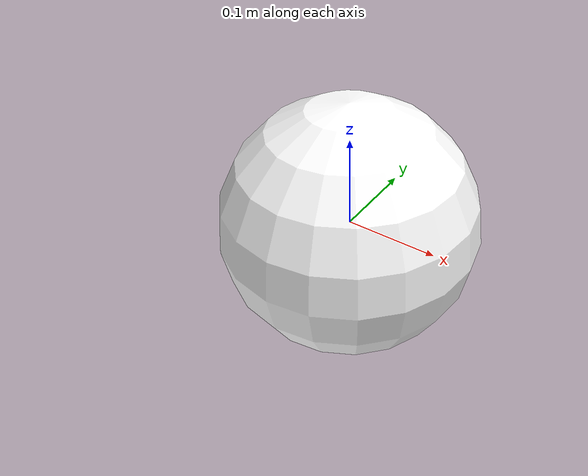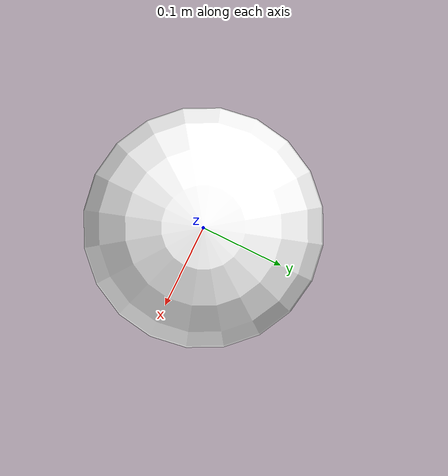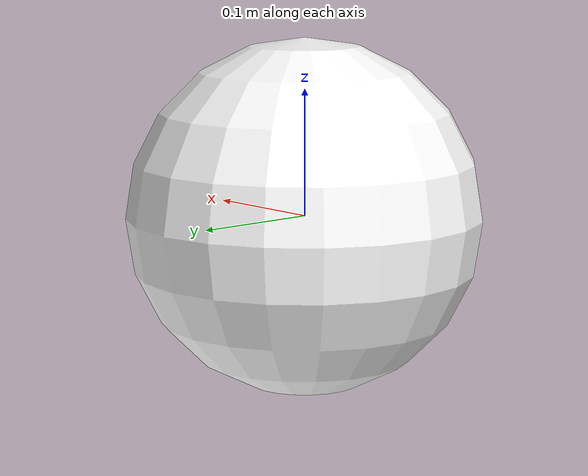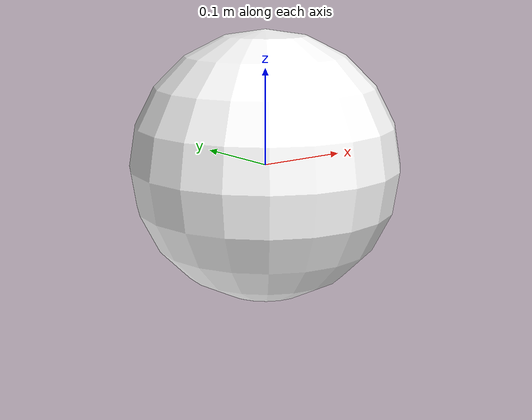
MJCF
<mujoco model='Two obstacles ball'>
    <!-- This file is going to make the structure of a moving_hand -->
	<compiler inertiafromgeom='true' angle='degree'/>
    <default>
        <joint limited='true' damping='1' armature='0'/>
        <geom contype='1' conaffinity='1' condim='1' rgba='0.5 0.3 .4 1'
        	margin="0.001" solref=".02 1" solimp=".8 .8 .01"/>
        <motor ctrlrange='-.4 .4' ctrllimited='true'/>
		<!-- add some classes -->
    </default>

    <option timestep='0.002' iterations="50" tolerance="1e-10" solver="Newton" jacobian="dense" cone="elliptic"/>

    <size nstack="1000000"/>

    <visual>
	<!-- the visual part, which is not very important -->
        <map fogstart="3" fogend="5" force="0.1" znear="0.5"/>
        <quality shadowsize="2048" offsamples="8"/>
        <global offwidth="800" offheight="800"/>
		<!-- the size of the scenary -->
    </visual>

    <asset>
        <!-- asset is the predefined setting -->
		<texture type="skybox" builtin="gradient" width="128" height="128" rgb1=".4 .6 .8"
            rgb2="0 0 0"/>
        <texture name="texgeom" type="cube" builtin="flat" mark="cross" width="127" height="1278"
            rgb1="0.4 0.4 0.1" rgb2="0.5 0.5 0.1" markrgb="1 1 1" random="0.01"/>
        <texture name="texplane" type="2d" builtin="checker" rgb1=".2 .3 .4" rgb2=".1 0.15 0.2"
            width="512" height="512"/>
		<!-- the material is a more complicated structure -->
        <material name='MatPlane' reflectance='0.3' texture="texplane" texrepeat="1 1" texuniform="true"/>
    </asset>

    <worldbody>
		<!-- the light is bounded on a body-->
        <light mode='targetbodycom' target='ball' directional='false' castshadow='false'  diffuse='.8 .8 .8' specular='0.3 0.3 0.3' pos='1 1 4.0' dir='0 0 -1'/>
		<!-- structure for the hand first -->
		<body name='ball' pos='0.0 0.0 0.0'>
            <!-- transition free on this plane -->
			<joint name='slide1' type='slide' range='-1.0 1.0' axis='1 0 0' />
			<joint name='slide2' type='slide' range='-1.0 1.0' axis='0 1 0' />
			<geom type='sphere' size="0.04" rgba=".5 .0 .5 1"/>
		</body>
		<body name='slidebar' pos='0.0 0.0 0.0'>
			<geom type='sphere' size='0.09' rgba=".5 .5 .0 1"/>
			<site name='button' type='sphere' size='0.1' rgba='1 1 1 0'/>
			<!-- the button should free move -->
			<joint name='slide3' type='slide' range='-1.0 1.0' axis='1 0 0' />
			<joint name='slide4' type='slide' range='-1.0 1.0' axis='0 1 0' />
		</body>
		<!-- a coordinate around coordinate of size 0.15 -->
        <body name='obstacle' pos='0 0 0'>
		<!-- the obstacle can move among all of the area -->
            <inertial pos='0 0 0' mass='10000000' diaginertia='166.67 166.67 166.67' />
		    <geom name = 'safe_ball' type='sphere' rgba='1 1 1 1' size = '0.14'/>
		    <site name='safe_area' type='sphere' rgba='1 1 1 0' size='0.15'/>
			<joint name='safe_slide1' type='slide' range='-1.0 1.0' axis='1 0 0' />
			<joint name='safe_slide2' type='slide' range='-1.0 1.0' axis='0 1 0' />
        </body>

        <body name='obstacle_2' pos='0 0 0'>
		<!-- the obstacle can move among all of the area -->
            <inertial pos='0 0 0' mass='10000000' diaginertia='166.67 166.67 166.67' />
		    <geom name = 'safe_ball_2' type='sphere' rgba='1 1 1 1' size = '0.14'/>
		    <site name='safe_area_2' type='sphere' rgba='1 1 1 0' size='0.15'/>
			<joint name='safe_slide3' type='slide' range='-1.0 1.0' axis='1 0 0' />
			<joint name='safe_slide4' type='slide' range='-1.0 1.0' axis='0 1 0' />
        </body>

        <camera name="camera1" mode="fixed" pos="0 0 2.6" />
        <camera name="camera2" mode="fixed" pos="0 0.5 0" quat="0 0 1 1"/>
    </worldbody>
	<!-- body finished -->
	<sensor>
		<touch name='touch_button' site='button'/>
		<touch name='safe_area' site='safe_area'/>
		<touch name='safe_area_2' site='safe_area_2'/>
	</sensor>
	<!-- actuator -->
    <actuator>
		<motor joint='slide1' name='slide1' ctrlrange='-0.5 0.5'/>
		<motor joint='slide2' name='slide2' ctrlrange='-0.5 0.5'/>
		<motor joint='safe_slide1' name='safe_slide1' ctrlrange='-0.5 0.5'/>
		<motor joint='safe_slide2' name='safe_slide2' ctrlrange='-0.5 0.5'/>
		<motor joint='safe_slide3' name='safe_slide3' ctrlrange='-0.5 0.5'/>
		<motor joint='safe_slide4' name='safe_slide4' ctrlrange='-0.5 0.5'/>
	</actuator>
</mujoco>
